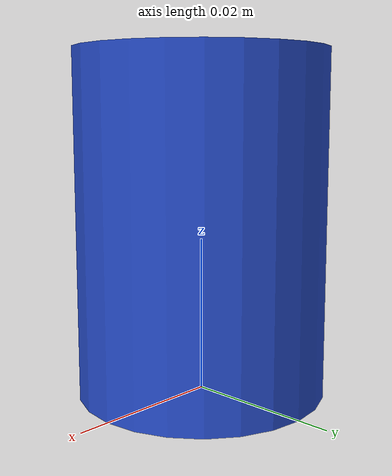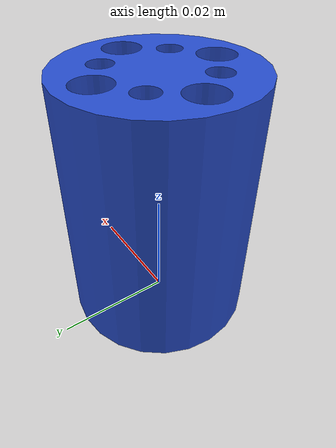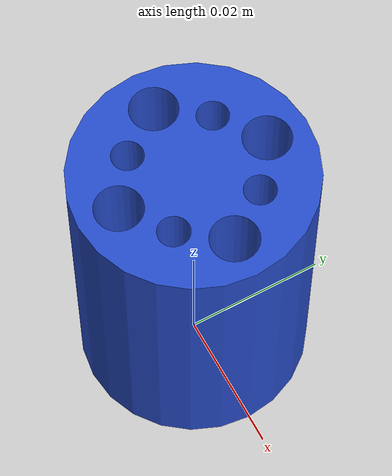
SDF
<?xml version="1.0" ?>
<sdf version="1.5">
  <model name="unob_1">
    <static>true</static>
    <link name="unob_1_link">

      <collision name="collision">
        <geometry>
          <mesh>
            <uri>model://unob_1/meshes/unob_1.dae</uri>
            <scale>0.4 0.4 2.2</scale>
          </mesh>
        </geometry>
      </collision>

      <visual name="visual">
        <geometry>
          <mesh>
            <uri>model://unob_1/meshes/unob_1.dae</uri>
            <scale>0.4 0.4 2.2</scale>
          </mesh>
        </geometry>
        <material>
          <script>
            <uri>file://media/materials/scripts/gazebo.material</uri>
            <name>Gazebo/Blue</name>
          </script>
        </material>
      </visual>
    </link>
  </model>
</sdf>
